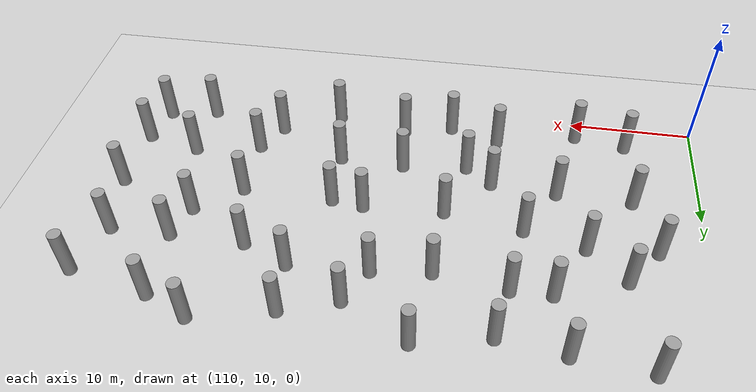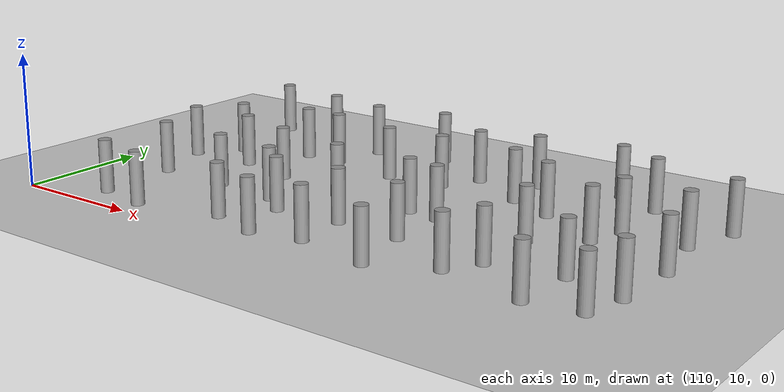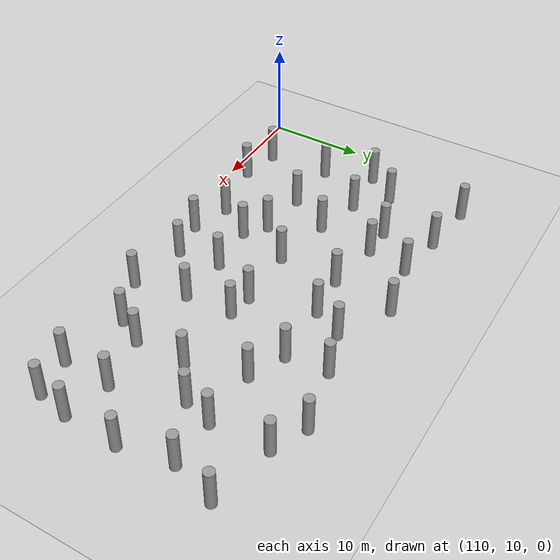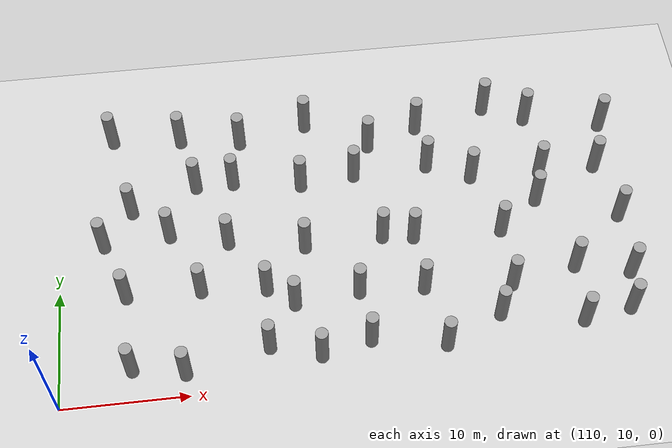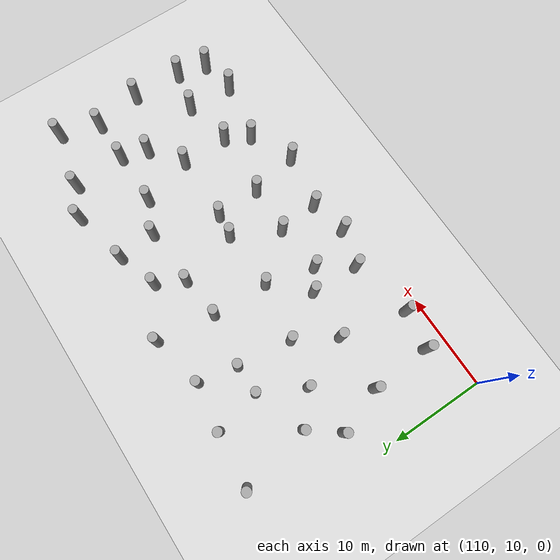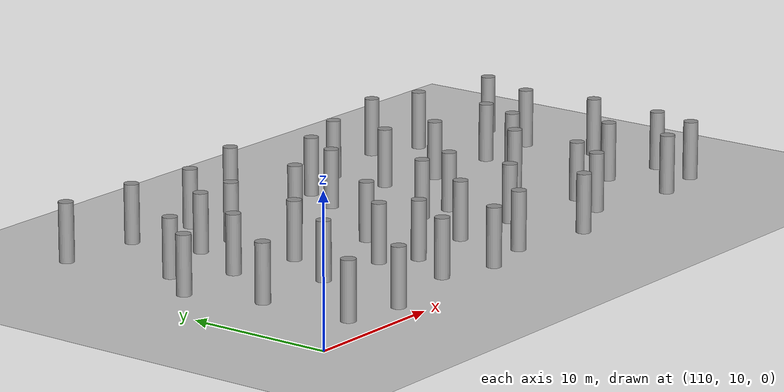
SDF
<sdf version="1.5">
 <world name="circle">
  <model name="ground">
   <static>1</static>
   <link name="link">
    <collision name="collision">
     <geometry><plane><normal>0 0 1</normal><size>100 100</size></plane></geometry>
     <surface><friction><ode><mu>100</mu><mu2>50</mu2></ode></friction></surface>
    </collision>
    <visual name="visual">
     <cast_shadows>0</cast_shadows>
     <geometry><plane><normal>0 0 1</normal><size>100 100</size></plane></geometry>
     <material>
      <script><uri>file://media/materials/scripts/gazebo.material</uri><name>Gazebo/Grey</name></script>
     </material>
    </visual>
    <velocity_decay><linear>0</linear><angular>0</angular></velocity_decay>
   </link>
  </model>
  <model name="unit_cylinder_325">
   <pose>115.605989568 12.5002759214 2 3e-06 4e-06 -0</pose>
   <static>1</static>
   <self_collide>1</self_collide>
   <link name="link">
    <inertial>
     <mass>1</mass>
     <inertia><ixx>0.145833</ixx><ixy>0</ixy><ixz>0</ixz><iyy>0.145833</iyy><iyz>0</iyz><izz>0.125</izz></inertia>
    </inertial>
    <collision name="collision">
     <geometry><cylinder><radius>0.5</radius><length>4</length></cylinder></geometry>
    </collision>
    <visual name="visual">
     <geometry><cylinder><radius>0.5</radius><length>4</length></cylinder></geometry>
     <material>
      <script><name>Gazebo/Grey</name><uri>file://media/materials/scripts/gazebo.material</uri></script>
     </material>
    </visual>
    <collision name="cyl_collision">
     <geometry><cylinder><radius>0.5</radius><length>4</length></cylinder></geometry>
    </collision>
    <sensor name="my_contact" type="contact">
     <contact><collision>cyl_collision</collision></contact>
     <update_rate>5</update_rate>
    </sensor>
   </link>
  </model>
  <model name="unit_cylinder_326">
   <pose>115.280411595 18.9539928853 2 3e-06 4e-06 -0</pose>
   <static>1</static>
   <self_collide>1</self_collide>
   <link name="link">
    <inertial>
     <mass>1</mass>
     <inertia><ixx>0.145833</ixx><ixy>0</ixy><ixz>0</ixz><iyy>0.145833</iyy><iyz>0</iyz><izz>0.125</izz></inertia>
    </inertial>
    <collision name="collision">
     <geometry><cylinder><radius>0.5</radius><length>4</length></cylinder></geometry>
    </collision>
    <visual name="visual">
     <geometry><cylinder><radius>0.5</radius><length>4</length></cylinder></geometry>
     <material>
      <script><name>Gazebo/Grey</name><uri>file://media/materials/scripts/gazebo.material</uri></script>
     </material>
    </visual>
    <collision name="cyl_collision">
     <geometry><cylinder><radius>0.5</radius><length>4</length></cylinder></geometry>
    </collision>
    <sensor name="my_contact" type="contact">
     <contact><collision>cyl_collision</collision></contact>
     <update_rate>5</update_rate>
    </sensor>
   </link>
  </model>
  <model name="unit_cylinder_327">
   <pose>113.591229002 23.8937140736 2 3e-06 4e-06 -0</pose>
   <static>1</static>
   <self_collide>1</self_collide>
   <link name="link">
    <inertial>
     <mass>1</mass>
     <inertia><ixx>0.145833</ixx><ixy>0</ixy><ixz>0</ixz><iyy>0.145833</iyy><iyz>0</iyz><izz>0.125</izz></inertia>
    </inertial>
    <collision name="collision">
     <geometry><cylinder><radius>0.5</radius><length>4</length></cylinder></geometry>
    </collision>
    <visual name="visual">
     <geometry><cylinder><radius>0.5</radius><length>4</length></cylinder></geometry>
     <material>
      <script><name>Gazebo/Grey</name><uri>file://media/materials/scripts/gazebo.material</uri></script>
     </material>
    </visual>
    <collision name="cyl_collision">
     <geometry><cylinder><radius>0.5</radius><length>4</length></cylinder></geometry>
    </collision>
    <sensor name="my_contact" type="contact">
     <contact><collision>cyl_collision</collision></contact>
     <update_rate>5</update_rate>
    </sensor>
   </link>
  </model>
  <model name="unit_cylinder_328">
   <pose>115.924734991 26.9651055388 2 3e-06 4e-06 -0</pose>
   <static>1</static>
   <self_collide>1</self_collide>
   <link name="link">
    <inertial>
     <mass>1</mass>
     <inertia><ixx>0.145833</ixx><ixy>0</ixy><ixz>0</ixz><iyy>0.145833</iyy><iyz>0</iyz><izz>0.125</izz></inertia>
    </inertial>
    <collision name="collision">
     <geometry><cylinder><radius>0.5</radius><length>4</length></cylinder></geometry>
    </collision>
    <visual name="visual">
     <geometry><cylinder><radius>0.5</radius><length>4</length></cylinder></geometry>
     <material>
      <script><name>Gazebo/Grey</name><uri>file://media/materials/scripts/gazebo.material</uri></script>
     </material>
    </visual>
    <collision name="cyl_collision">
     <geometry><cylinder><radius>0.5</radius><length>4</length></cylinder></geometry>
    </collision>
    <sensor name="my_contact" type="contact">
     <contact><collision>cyl_collision</collision></contact>
     <update_rate>5</update_rate>
    </sensor>
   </link>
  </model>
  <model name="unit_cylinder_329">
   <pose>114.476841244 34.3691525515 2 3e-06 4e-06 -0</pose>
   <static>1</static>
   <self_collide>1</self_collide>
   <link name="link">
    <inertial>
     <mass>1</mass>
     <inertia><ixx>0.145833</ixx><ixy>0</ixy><ixz>0</ixz><iyy>0.145833</iyy><iyz>0</iyz><izz>0.125</izz></inertia>
    </inertial>
    <collision name="collision">
     <geometry><cylinder><radius>0.5</radius><length>4</length></cylinder></geometry>
    </collision>
    <visual name="visual">
     <geometry><cylinder><radius>0.5</radius><length>4</length></cylinder></geometry>
     <material>
      <script><name>Gazebo/Grey</name><uri>file://media/materials/scripts/gazebo.material</uri></script>
     </material>
    </visual>
    <collision name="cyl_collision">
     <geometry><cylinder><radius>0.5</radius><length>4</length></cylinder></geometry>
    </collision>
    <sensor name="my_contact" type="contact">
     <contact><collision>cyl_collision</collision></contact>
     <update_rate>5</update_rate>
    </sensor>
   </link>
  </model>
  <model name="unit_cylinder_340">
   <pose>119.692809883 11.7624338996 2 3e-06 4e-06 -0</pose>
   <static>1</static>
   <self_collide>1</self_collide>
   <link name="link">
    <inertial>
     <mass>1</mass>
     <inertia><ixx>0.145833</ixx><ixy>0</ixy><ixz>0</ixz><iyy>0.145833</iyy><iyz>0</iyz><izz>0.125</izz></inertia>
    </inertial>
    <collision name="collision">
     <geometry><cylinder><radius>0.5</radius><length>4</length></cylinder></geometry>
    </collision>
    <visual name="visual">
     <geometry><cylinder><radius>0.5</radius><length>4</length></cylinder></geometry>
     <material>
      <script><name>Gazebo/Grey</name><uri>file://media/materials/scripts/gazebo.material</uri></script>
     </material>
    </visual>
    <collision name="cyl_collision">
     <geometry><cylinder><radius>0.5</radius><length>4</length></cylinder></geometry>
    </collision>
    <sensor name="my_contact" type="contact">
     <contact><collision>cyl_collision</collision></contact>
     <update_rate>5</update_rate>
    </sensor>
   </link>
  </model>
  <model name="unit_cylinder_341">
   <pose>121.208954116 18.8338759561 2 3e-06 4e-06 -0</pose>
   <static>1</static>
   <self_collide>1</self_collide>
   <link name="link">
    <inertial>
     <mass>1</mass>
     <inertia><ixx>0.145833</ixx><ixy>0</ixy><ixz>0</ixz><iyy>0.145833</iyy><iyz>0</iyz><izz>0.125</izz></inertia>
    </inertial>
    <collision name="collision">
     <geometry><cylinder><radius>0.5</radius><length>4</length></cylinder></geometry>
    </collision>
    <visual name="visual">
     <geometry><cylinder><radius>0.5</radius><length>4</length></cylinder></geometry>
     <material>
      <script><name>Gazebo/Grey</name><uri>file://media/materials/scripts/gazebo.material</uri></script>
     </material>
    </visual>
    <collision name="cyl_collision">
     <geometry><cylinder><radius>0.5</radius><length>4</length></cylinder></geometry>
    </collision>
    <sensor name="my_contact" type="contact">
     <contact><collision>cyl_collision</collision></contact>
     <update_rate>5</update_rate>
    </sensor>
   </link>
  </model>
  <model name="unit_cylinder_342">
   <pose>118.934955821 24.2760195008 2 3e-06 4e-06 -0</pose>
   <static>1</static>
   <self_collide>1</self_collide>
   <link name="link">
    <inertial>
     <mass>1</mass>
     <inertia><ixx>0.145833</ixx><ixy>0</ixy><ixz>0</ixz><iyy>0.145833</iyy><iyz>0</iyz><izz>0.125</izz></inertia>
    </inertial>
    <collision name="collision">
     <geometry><cylinder><radius>0.5</radius><length>4</length></cylinder></geometry>
    </collision>
    <visual name="visual">
     <geometry><cylinder><radius>0.5</radius><length>4</length></cylinder></geometry>
     <material>
      <script><name>Gazebo/Grey</name><uri>file://media/materials/scripts/gazebo.material</uri></script>
     </material>
    </visual>
    <collision name="cyl_collision">
     <geometry><cylinder><radius>0.5</radius><length>4</length></cylinder></geometry>
    </collision>
    <sensor name="my_contact" type="contact">
     <contact><collision>cyl_collision</collision></contact>
     <update_rate>5</update_rate>
    </sensor>
   </link>
  </model>
  <model name="unit_cylinder_343">
   <pose>121.280667413 28.902046064 2 3e-06 4e-06 -0</pose>
   <static>1</static>
   <self_collide>1</self_collide>
   <link name="link">
    <inertial>
     <mass>1</mass>
     <inertia><ixx>0.145833</ixx><ixy>0</ixy><ixz>0</ixz><iyy>0.145833</iyy><iyz>0</iyz><izz>0.125</izz></inertia>
    </inertial>
    <collision name="collision">
     <geometry><cylinder><radius>0.5</radius><length>4</length></cylinder></geometry>
    </collision>
    <visual name="visual">
     <geometry><cylinder><radius>0.5</radius><length>4</length></cylinder></geometry>
     <material>
      <script><name>Gazebo/Grey</name><uri>file://media/materials/scripts/gazebo.material</uri></script>
     </material>
    </visual>
    <collision name="cyl_collision">
     <geometry><cylinder><radius>0.5</radius><length>4</length></cylinder></geometry>
    </collision>
    <sensor name="my_contact" type="contact">
     <contact><collision>cyl_collision</collision></contact>
     <update_rate>5</update_rate>
    </sensor>
   </link>
  </model>
  <model name="unit_cylinder_344">
   <pose>120.201051426 33.7882813097 2 3e-06 4e-06 -0</pose>
   <static>1</static>
   <self_collide>1</self_collide>
   <link name="link">
    <inertial>
     <mass>1</mass>
     <inertia><ixx>0.145833</ixx><ixy>0</ixy><ixz>0</ixz><iyy>0.145833</iyy><iyz>0</iyz><izz>0.125</izz></inertia>
    </inertial>
    <collision name="collision">
     <geometry><cylinder><radius>0.5</radius><length>4</length></cylinder></geometry>
    </collision>
    <visual name="visual">
     <geometry><cylinder><radius>0.5</radius><length>4</length></cylinder></geometry>
     <material>
      <script><name>Gazebo/Grey</name><uri>file://media/materials/scripts/gazebo.material</uri></script>
     </material>
    </visual>
    <collision name="cyl_collision">
     <geometry><cylinder><radius>0.5</radius><length>4</length></cylinder></geometry>
    </collision>
    <sensor name="my_contact" type="contact">
     <contact><collision>cyl_collision</collision></contact>
     <update_rate>5</update_rate>
    </sensor>
   </link>
  </model>
  <model name="unit_cylinder_355">
   <pose>126.243657267 13.2986552368 2 3e-06 4e-06 -0</pose>
   <static>1</static>
   <self_collide>1</self_collide>
   <link name="link">
    <inertial>
     <mass>1</mass>
     <inertia><ixx>0.145833</ixx><ixy>0</ixy><ixz>0</ixz><iyy>0.145833</iyy><iyz>0</iyz><izz>0.125</izz></inertia>
    </inertial>
    <collision name="collision">
     <geometry><cylinder><radius>0.5</radius><length>4</length></cylinder></geometry>
    </collision>
    <visual name="visual">
     <geometry><cylinder><radius>0.5</radius><length>4</length></cylinder></geometry>
     <material>
      <script><name>Gazebo/Grey</name><uri>file://media/materials/scripts/gazebo.material</uri></script>
     </material>
    </visual>
    <collision name="cyl_collision">
     <geometry><cylinder><radius>0.5</radius><length>4</length></cylinder></geometry>
    </collision>
    <sensor name="my_contact" type="contact">
     <contact><collision>cyl_collision</collision></contact>
     <update_rate>5</update_rate>
    </sensor>
   </link>
  </model>
  <model name="unit_cylinder_356">
   <pose>126.404125272 18.4428897488 2 3e-06 4e-06 -0</pose>
   <static>1</static>
   <self_collide>1</self_collide>
   <link name="link">
    <inertial>
     <mass>1</mass>
     <inertia><ixx>0.145833</ixx><ixy>0</ixy><ixz>0</ixz><iyy>0.145833</iyy><iyz>0</iyz><izz>0.125</izz></inertia>
    </inertial>
    <collision name="collision">
     <geometry><cylinder><radius>0.5</radius><length>4</length></cylinder></geometry>
    </collision>
    <visual name="visual">
     <geometry><cylinder><radius>0.5</radius><length>4</length></cylinder></geometry>
     <material>
      <script><name>Gazebo/Grey</name><uri>file://media/materials/scripts/gazebo.material</uri></script>
     </material>
    </visual>
    <collision name="cyl_collision">
     <geometry><cylinder><radius>0.5</radius><length>4</length></cylinder></geometry>
    </collision>
    <sensor name="my_contact" type="contact">
     <contact><collision>cyl_collision</collision></contact>
     <update_rate>5</update_rate>
    </sensor>
   </link>
  </model>
  <model name="unit_cylinder_357">
   <pose>123.637140775 23.1095531696 2 3e-06 4e-06 -0</pose>
   <static>1</static>
   <self_collide>1</self_collide>
   <link name="link">
    <inertial>
     <mass>1</mass>
     <inertia><ixx>0.145833</ixx><ixy>0</ixy><ixz>0</ixz><iyy>0.145833</iyy><iyz>0</iyz><izz>0.125</izz></inertia>
    </inertial>
    <collision name="collision">
     <geometry><cylinder><radius>0.5</radius><length>4</length></cylinder></geometry>
    </collision>
    <visual name="visual">
     <geometry><cylinder><radius>0.5</radius><length>4</length></cylinder></geometry>
     <material>
      <script><name>Gazebo/Grey</name><uri>file://media/materials/scripts/gazebo.material</uri></script>
     </material>
    </visual>
    <collision name="cyl_collision">
     <geometry><cylinder><radius>0.5</radius><length>4</length></cylinder></geometry>
    </collision>
    <sensor name="my_contact" type="contact">
     <contact><collision>cyl_collision</collision></contact>
     <update_rate>5</update_rate>
    </sensor>
   </link>
  </model>
  <model name="unit_cylinder_358">
   <pose>124.386950311 28.9359830992 2 3e-06 4e-06 -0</pose>
   <static>1</static>
   <self_collide>1</self_collide>
   <link name="link">
    <inertial>
     <mass>1</mass>
     <inertia><ixx>0.145833</ixx><ixy>0</ixy><ixz>0</ixz><iyy>0.145833</iyy><iyz>0</iyz><izz>0.125</izz></inertia>
    </inertial>
    <collision name="collision">
     <geometry><cylinder><radius>0.5</radius><length>4</length></cylinder></geometry>
    </collision>
    <visual name="visual">
     <geometry><cylinder><radius>0.5</radius><length>4</length></cylinder></geometry>
     <material>
      <script><name>Gazebo/Grey</name><uri>file://media/materials/scripts/gazebo.material</uri></script>
     </material>
    </visual>
    <collision name="cyl_collision">
     <geometry><cylinder><radius>0.5</radius><length>4</length></cylinder></geometry>
    </collision>
    <sensor name="my_contact" type="contact">
     <contact><collision>cyl_collision</collision></contact>
     <update_rate>5</update_rate>
    </sensor>
   </link>
  </model>
  <model name="unit_cylinder_359">
   <pose>125.207109356 33.0609135572 2 3e-06 4e-06 -0</pose>
   <static>1</static>
   <self_collide>1</self_collide>
   <link name="link">
    <inertial>
     <mass>1</mass>
     <inertia><ixx>0.145833</ixx><ixy>0</ixy><ixz>0</ixz><iyy>0.145833</iyy><iyz>0</iyz><izz>0.125</izz></inertia>
    </inertial>
    <collision name="collision">
     <geometry><cylinder><radius>0.5</radius><length>4</length></cylinder></geometry>
    </collision>
    <visual name="visual">
     <geometry><cylinder><radius>0.5</radius><length>4</length></cylinder></geometry>
     <material>
      <script><name>Gazebo/Grey</name><uri>file://media/materials/scripts/gazebo.material</uri></script>
     </material>
    </visual>
    <collision name="cyl_collision">
     <geometry><cylinder><radius>0.5</radius><length>4</length></cylinder></geometry>
    </collision>
    <sensor name="my_contact" type="contact">
     <contact><collision>cyl_collision</collision></contact>
     <update_rate>5</update_rate>
    </sensor>
   </link>
  </model>
  <model name="unit_cylinder_370">
   <pose>130.178801308 12.125310192 2 3e-06 4e-06 -0</pose>
   <static>1</static>
   <self_collide>1</self_collide>
   <link name="link">
    <inertial>
     <mass>1</mass>
     <inertia><ixx>0.145833</ixx><ixy>0</ixy><ixz>0</ixz><iyy>0.145833</iyy><iyz>0</iyz><izz>0.125</izz></inertia>
    </inertial>
    <collision name="collision">
     <geometry><cylinder><radius>0.5</radius><length>4</length></cylinder></geometry>
    </collision>
    <visual name="visual">
     <geometry><cylinder><radius>0.5</radius><length>4</length></cylinder></geometry>
     <material>
      <script><name>Gazebo/Grey</name><uri>file://media/materials/scripts/gazebo.material</uri></script>
     </material>
    </visual>
    <collision name="cyl_collision">
     <geometry><cylinder><radius>0.5</radius><length>4</length></cylinder></geometry>
    </collision>
    <sensor name="my_contact" type="contact">
     <contact><collision>cyl_collision</collision></contact>
     <update_rate>5</update_rate>
    </sensor>
   </link>
  </model>
  <model name="unit_cylinder_371">
   <pose>128.517404867 16.8608073278 2 3e-06 4e-06 -0</pose>
   <static>1</static>
   <self_collide>1</self_collide>
   <link name="link">
    <inertial>
     <mass>1</mass>
     <inertia><ixx>0.145833</ixx><ixy>0</ixy><ixz>0</ixz><iyy>0.145833</iyy><iyz>0</iyz><izz>0.125</izz></inertia>
    </inertial>
    <collision name="collision">
     <geometry><cylinder><radius>0.5</radius><length>4</length></cylinder></geometry>
    </collision>
    <visual name="visual">
     <geometry><cylinder><radius>0.5</radius><length>4</length></cylinder></geometry>
     <material>
      <script><name>Gazebo/Grey</name><uri>file://media/materials/scripts/gazebo.material</uri></script>
     </material>
    </visual>
    <collision name="cyl_collision">
     <geometry><cylinder><radius>0.5</radius><length>4</length></cylinder></geometry>
    </collision>
    <sensor name="my_contact" type="contact">
     <contact><collision>cyl_collision</collision></contact>
     <update_rate>5</update_rate>
    </sensor>
   </link>
  </model>
  <model name="unit_cylinder_372">
   <pose>129.798509613 22.0510549619 2 3e-06 4e-06 -0</pose>
   <static>1</static>
   <self_collide>1</self_collide>
   <link name="link">
    <inertial>
     <mass>1</mass>
     <inertia><ixx>0.145833</ixx><ixy>0</ixy><ixz>0</ixz><iyy>0.145833</iyy><iyz>0</iyz><izz>0.125</izz></inertia>
    </inertial>
    <collision name="collision">
     <geometry><cylinder><radius>0.5</radius><length>4</length></cylinder></geometry>
    </collision>
    <visual name="visual">
     <geometry><cylinder><radius>0.5</radius><length>4</length></cylinder></geometry>
     <material>
      <script><name>Gazebo/Grey</name><uri>file://media/materials/scripts/gazebo.material</uri></script>
     </material>
    </visual>
    <collision name="cyl_collision">
     <geometry><cylinder><radius>0.5</radius><length>4</length></cylinder></geometry>
    </collision>
    <sensor name="my_contact" type="contact">
     <contact><collision>cyl_collision</collision></contact>
     <update_rate>5</update_rate>
    </sensor>
   </link>
  </model>
  <model name="unit_cylinder_373">
   <pose>130.001399854 28.1161930904 2 3e-06 4e-06 -0</pose>
   <static>1</static>
   <self_collide>1</self_collide>
   <link name="link">
    <inertial>
     <mass>1</mass>
     <inertia><ixx>0.145833</ixx><ixy>0</ixy><ixz>0</ixz><iyy>0.145833</iyy><iyz>0</iyz><izz>0.125</izz></inertia>
    </inertial>
    <collision name="collision">
     <geometry><cylinder><radius>0.5</radius><length>4</length></cylinder></geometry>
    </collision>
    <visual name="visual">
     <geometry><cylinder><radius>0.5</radius><length>4</length></cylinder></geometry>
     <material>
      <script><name>Gazebo/Grey</name><uri>file://media/materials/scripts/gazebo.material</uri></script>
     </material>
    </visual>
    <collision name="cyl_collision">
     <geometry><cylinder><radius>0.5</radius><length>4</length></cylinder></geometry>
    </collision>
    <sensor name="my_contact" type="contact">
     <contact><collision>cyl_collision</collision></contact>
     <update_rate>5</update_rate>
    </sensor>
   </link>
  </model>
  <model name="unit_cylinder_374">
   <pose>130.865938101 34.2965330529 2 3e-06 4e-06 -0</pose>
   <static>1</static>
   <self_collide>1</self_collide>
   <link name="link">
    <inertial>
     <mass>1</mass>
     <inertia><ixx>0.145833</ixx><ixy>0</ixy><ixz>0</ixz><iyy>0.145833</iyy><iyz>0</iyz><izz>0.125</izz></inertia>
    </inertial>
    <collision name="collision">
     <geometry><cylinder><radius>0.5</radius><length>4</length></cylinder></geometry>
    </collision>
    <visual name="visual">
     <geometry><cylinder><radius>0.5</radius><length>4</length></cylinder></geometry>
     <material>
      <script><name>Gazebo/Grey</name><uri>file://media/materials/scripts/gazebo.material</uri></script>
     </material>
    </visual>
    <collision name="cyl_collision">
     <geometry><cylinder><radius>0.5</radius><length>4</length></cylinder></geometry>
    </collision>
    <sensor name="my_contact" type="contact">
     <contact><collision>cyl_collision</collision></contact>
     <update_rate>5</update_rate>
    </sensor>
   </link>
  </model>
  <model name="unit_cylinder_385">
   <pose>134.107284195 13.0319700129 2 3e-06 4e-06 -0</pose>
   <static>1</static>
   <self_collide>1</self_collide>
   <link name="link">
    <inertial>
     <mass>1</mass>
     <inertia><ixx>0.145833</ixx><ixy>0</ixy><ixz>0</ixz><iyy>0.145833</iyy><iyz>0</iyz><izz>0.125</izz></inertia>
    </inertial>
    <collision name="collision">
     <geometry><cylinder><radius>0.5</radius><length>4</length></cylinder></geometry>
    </collision>
    <visual name="visual">
     <geometry><cylinder><radius>0.5</radius><length>4</length></cylinder></geometry>
     <material>
      <script><name>Gazebo/Grey</name><uri>file://media/materials/scripts/gazebo.material</uri></script>
     </material>
    </visual>
    <collision name="cyl_collision">
     <geometry><cylinder><radius>0.5</radius><length>4</length></cylinder></geometry>
    </collision>
    <sensor name="my_contact" type="contact">
     <contact><collision>cyl_collision</collision></contact>
     <update_rate>5</update_rate>
    </sensor>
   </link>
  </model>
  <model name="unit_cylinder_386">
   <pose>133.686815189 17.3727570334 2 3e-06 4e-06 -0</pose>
   <static>1</static>
   <self_collide>1</self_collide>
   <link name="link">
    <inertial>
     <mass>1</mass>
     <inertia><ixx>0.145833</ixx><ixy>0</ixy><ixz>0</ixz><iyy>0.145833</iyy><iyz>0</iyz><izz>0.125</izz></inertia>
    </inertial>
    <collision name="collision">
     <geometry><cylinder><radius>0.5</radius><length>4</length></cylinder></geometry>
    </collision>
    <visual name="visual">
     <geometry><cylinder><radius>0.5</radius><length>4</length></cylinder></geometry>
     <material>
      <script><name>Gazebo/Grey</name><uri>file://media/materials/scripts/gazebo.material</uri></script>
     </material>
    </visual>
    <collision name="cyl_collision">
     <geometry><cylinder><radius>0.5</radius><length>4</length></cylinder></geometry>
    </collision>
    <sensor name="my_contact" type="contact">
     <contact><collision>cyl_collision</collision></contact>
     <update_rate>5</update_rate>
    </sensor>
   </link>
  </model>
  <model name="unit_cylinder_387">
   <pose>136.136465385 22.3153739831 2 3e-06 4e-06 -0</pose>
   <static>1</static>
   <self_collide>1</self_collide>
   <link name="link">
    <inertial>
     <mass>1</mass>
     <inertia><ixx>0.145833</ixx><ixy>0</ixy><ixz>0</ixz><iyy>0.145833</iyy><iyz>0</iyz><izz>0.125</izz></inertia>
    </inertial>
    <collision name="collision">
     <geometry><cylinder><radius>0.5</radius><length>4</length></cylinder></geometry>
    </collision>
    <visual name="visual">
     <geometry><cylinder><radius>0.5</radius><length>4</length></cylinder></geometry>
     <material>
      <script><name>Gazebo/Grey</name><uri>file://media/materials/scripts/gazebo.material</uri></script>
     </material>
    </visual>
    <collision name="cyl_collision">
     <geometry><cylinder><radius>0.5</radius><length>4</length></cylinder></geometry>
    </collision>
    <sensor name="my_contact" type="contact">
     <contact><collision>cyl_collision</collision></contact>
     <update_rate>5</update_rate>
    </sensor>
   </link>
  </model>
  <model name="unit_cylinder_388">
   <pose>134.492599111 28.6259088126 2 3e-06 4e-06 -0</pose>
   <static>1</static>
   <self_collide>1</self_collide>
   <link name="link">
    <inertial>
     <mass>1</mass>
     <inertia><ixx>0.145833</ixx><ixy>0</ixy><ixz>0</ixz><iyy>0.145833</iyy><iyz>0</iyz><izz>0.125</izz></inertia>
    </inertial>
    <collision name="collision">
     <geometry><cylinder><radius>0.5</radius><length>4</length></cylinder></geometry>
    </collision>
    <visual name="visual">
     <geometry><cylinder><radius>0.5</radius><length>4</length></cylinder></geometry>
     <material>
      <script><name>Gazebo/Grey</name><uri>file://media/materials/scripts/gazebo.material</uri></script>
     </material>
    </visual>
    <collision name="cyl_collision">
     <geometry><cylinder><radius>0.5</radius><length>4</length></cylinder></geometry>
    </collision>
    <sensor name="my_contact" type="contact">
     <contact><collision>cyl_collision</collision></contact>
     <update_rate>5</update_rate>
    </sensor>
   </link>
  </model>
  <model name="unit_cylinder_389">
   <pose>136.032847185 31.5330151037 2 3e-06 4e-06 -0</pose>
   <static>1</static>
   <self_collide>1</self_collide>
   <link name="link">
    <inertial>
     <mass>1</mass>
     <inertia><ixx>0.145833</ixx><ixy>0</ixy><ixz>0</ixz><iyy>0.145833</iyy><iyz>0</iyz><izz>0.125</izz></inertia>
    </inertial>
    <collision name="collision">
     <geometry><cylinder><radius>0.5</radius><length>4</length></cylinder></geometry>
    </collision>
    <visual name="visual">
     <geometry><cylinder><radius>0.5</radius><length>4</length></cylinder></geometry>
     <material>
      <script><name>Gazebo/Grey</name><uri>file://media/materials/scripts/gazebo.material</uri></script>
     </material>
    </visual>
    <collision name="cyl_collision">
     <geometry><cylinder><radius>0.5</radius><length>4</length></cylinder></geometry>
    </collision>
    <sensor name="my_contact" type="contact">
     <contact><collision>cyl_collision</collision></contact>
     <update_rate>5</update_rate>
    </sensor>
   </link>
  </model>
  <model name="unit_cylinder_400">
   <pose>139.907118592 11.9881175852 2 3e-06 4e-06 -0</pose>
   <static>1</static>
   <self_collide>1</self_collide>
   <link name="link">
    <inertial>
     <mass>1</mass>
     <inertia><ixx>0.145833</ixx><ixy>0</ixy><ixz>0</ixz><iyy>0.145833</iyy><iyz>0</iyz><izz>0.125</izz></inertia>
    </inertial>
    <collision name="collision">
     <geometry><cylinder><radius>0.5</radius><length>4</length></cylinder></geometry>
    </collision>
    <visual name="visual">
     <geometry><cylinder><radius>0.5</radius><length>4</length></cylinder></geometry>
     <material>
      <script><name>Gazebo/Grey</name><uri>file://media/materials/scripts/gazebo.material</uri></script>
     </material>
    </visual>
    <collision name="cyl_collision">
     <geometry><cylinder><radius>0.5</radius><length>4</length></cylinder></geometry>
    </collision>
    <sensor name="my_contact" type="contact">
     <contact><collision>cyl_collision</collision></contact>
     <update_rate>5</update_rate>
    </sensor>
   </link>
  </model>
  <model name="unit_cylinder_401">
   <pose>138.853509311 17.1787029502 2 3e-06 4e-06 -0</pose>
   <static>1</static>
   <self_collide>1</self_collide>
   <link name="link">
    <inertial>
     <mass>1</mass>
     <inertia><ixx>0.145833</ixx><ixy>0</ixy><ixz>0</ixz><iyy>0.145833</iyy><iyz>0</iyz><izz>0.125</izz></inertia>
    </inertial>
    <collision name="collision">
     <geometry><cylinder><radius>0.5</radius><length>4</length></cylinder></geometry>
    </collision>
    <visual name="visual">
     <geometry><cylinder><radius>0.5</radius><length>4</length></cylinder></geometry>
     <material>
      <script><name>Gazebo/Grey</name><uri>file://media/materials/scripts/gazebo.material</uri></script>
     </material>
    </visual>
    <collision name="cyl_collision">
     <geometry><cylinder><radius>0.5</radius><length>4</length></cylinder></geometry>
    </collision>
    <sensor name="my_contact" type="contact">
     <contact><collision>cyl_collision</collision></contact>
     <update_rate>5</update_rate>
    </sensor>
   </link>
  </model>
  <model name="unit_cylinder_402">
   <pose>138.652755857 21.9917681627 2 3e-06 4e-06 -0</pose>
   <static>1</static>
   <self_collide>1</self_collide>
   <link name="link">
    <inertial>
     <mass>1</mass>
     <inertia><ixx>0.145833</ixx><ixy>0</ixy><ixz>0</ixz><iyy>0.145833</iyy><iyz>0</iyz><izz>0.125</izz></inertia>
    </inertial>
    <collision name="collision">
     <geometry><cylinder><radius>0.5</radius><length>4</length></cylinder></geometry>
    </collision>
    <visual name="visual">
     <geometry><cylinder><radius>0.5</radius><length>4</length></cylinder></geometry>
     <material>
      <script><name>Gazebo/Grey</name><uri>file://media/materials/scripts/gazebo.material</uri></script>
     </material>
    </visual>
    <collision name="cyl_collision">
     <geometry><cylinder><radius>0.5</radius><length>4</length></cylinder></geometry>
    </collision>
    <sensor name="my_contact" type="contact">
     <contact><collision>cyl_collision</collision></contact>
     <update_rate>5</update_rate>
    </sensor>
   </link>
  </model>
  <model name="unit_cylinder_403">
   <pose>140.683910757 28.8907137255 2 3e-06 4e-06 -0</pose>
   <static>1</static>
   <self_collide>1</self_collide>
   <link name="link">
    <inertial>
     <mass>1</mass>
     <inertia><ixx>0.145833</ixx><ixy>0</ixy><ixz>0</ixz><iyy>0.145833</iyy><iyz>0</iyz><izz>0.125</izz></inertia>
    </inertial>
    <collision name="collision">
     <geometry><cylinder><radius>0.5</radius><length>4</length></cylinder></geometry>
    </collision>
    <visual name="visual">
     <geometry><cylinder><radius>0.5</radius><length>4</length></cylinder></geometry>
     <material>
      <script><name>Gazebo/Grey</name><uri>file://media/materials/scripts/gazebo.material</uri></script>
     </material>
    </visual>
    <collision name="cyl_collision">
     <geometry><cylinder><radius>0.5</radius><length>4</length></cylinder></geometry>
    </collision>
    <sensor name="my_contact" type="contact">
     <contact><collision>cyl_collision</collision></contact>
     <update_rate>5</update_rate>
    </sensor>
   </link>
  </model>
  <model name="unit_cylinder_404">
   <pose>140.315204736 32.9915099361 2 3e-06 4e-06 -0</pose>
   <static>1</static>
   <self_collide>1</self_collide>
   <link name="link">
    <inertial>
     <mass>1</mass>
     <inertia><ixx>0.145833</ixx><ixy>0</ixy><ixz>0</ixz><iyy>0.145833</iyy><iyz>0</iyz><izz>0.125</izz></inertia>
    </inertial>
    <collision name="collision">
     <geometry><cylinder><radius>0.5</radius><length>4</length></cylinder></geometry>
    </collision>
    <visual name="visual">
     <geometry><cylinder><radius>0.5</radius><length>4</length></cylinder></geometry>
     <material>
      <script><name>Gazebo/Grey</name><uri>file://media/materials/scripts/gazebo.material</uri></script>
     </material>
    </visual>
    <collision name="cyl_collision">
     <geometry><cylinder><radius>0.5</radius><length>4</length></cylinder></geometry>
    </collision>
    <sensor name="my_contact" type="contact">
     <contact><collision>cyl_collision</collision></contact>
     <update_rate>5</update_rate>
    </sensor>
   </link>
  </model>
  <model name="unit_cylinder_415">
   <pose>144.476314827 14.171475402 2 3e-06 4e-06 -0</pose>
   <static>1</static>
   <self_collide>1</self_collide>
   <link name="link">
    <inertial>
     <mass>1</mass>
     <inertia><ixx>0.145833</ixx><ixy>0</ixy><ixz>0</ixz><iyy>0.145833</iyy><iyz>0</iyz><izz>0.125</izz></inertia>
    </inertial>
    <collision name="collision">
     <geometry><cylinder><radius>0.5</radius><length>4</length></cylinder></geometry>
    </collision>
    <visual name="visual">
     <geometry><cylinder><radius>0.5</radius><length>4</length></cylinder></geometry>
     <material>
      <script><name>Gazebo/Grey</name><uri>file://media/materials/scripts/gazebo.material</uri></script>
     </material>
    </visual>
    <collision name="cyl_collision">
     <geometry><cylinder><radius>0.5</radius><length>4</length></cylinder></geometry>
    </collision>
    <sensor name="my_contact" type="contact">
     <contact><collision>cyl_collision</collision></contact>
     <update_rate>5</update_rate>
    </sensor>
   </link>
  </model>
  <model name="unit_cylinder_416">
   <pose>145.874805639 16.7389174417 2 3e-06 4e-06 -0</pose>
   <static>1</static>
   <self_collide>1</self_collide>
   <link name="link">
    <inertial>
     <mass>1</mass>
     <inertia><ixx>0.145833</ixx><ixy>0</ixy><ixz>0</ixz><iyy>0.145833</iyy><iyz>0</iyz><izz>0.125</izz></inertia>
    </inertial>
    <collision name="collision">
     <geometry><cylinder><radius>0.5</radius><length>4</length></cylinder></geometry>
    </collision>
    <visual name="visual">
     <geometry><cylinder><radius>0.5</radius><length>4</length></cylinder></geometry>
     <material>
      <script><name>Gazebo/Grey</name><uri>file://media/materials/scripts/gazebo.material</uri></script>
     </material>
    </visual>
    <collision name="cyl_collision">
     <geometry><cylinder><radius>0.5</radius><length>4</length></cylinder></geometry>
    </collision>
    <sensor name="my_contact" type="contact">
     <contact><collision>cyl_collision</collision></contact>
     <update_rate>5</update_rate>
    </sensor>
   </link>
  </model>
  <model name="unit_cylinder_417">
   <pose>145.852013113 21.8367245242 2 3e-06 4e-06 -0</pose>
   <static>1</static>
   <self_collide>1</self_collide>
   <link name="link">
    <inertial>
     <mass>1</mass>
     <inertia><ixx>0.145833</ixx><ixy>0</ixy><ixz>0</ixz><iyy>0.145833</iyy><iyz>0</iyz><izz>0.125</izz></inertia>
    </inertial>
    <collision name="collision">
     <geometry><cylinder><radius>0.5</radius><length>4</length></cylinder></geometry>
    </collision>
    <visual name="visual">
     <geometry><cylinder><radius>0.5</radius><length>4</length></cylinder></geometry>
     <material>
      <script><name>Gazebo/Grey</name><uri>file://media/materials/scripts/gazebo.material</uri></script>
     </material>
    </visual>
    <collision name="cyl_collision">
     <geometry><cylinder><radius>0.5</radius><length>4</length></cylinder></geometry>
    </collision>
    <sensor name="my_contact" type="contact">
     <contact><collision>cyl_collision</collision></contact>
     <update_rate>5</update_rate>
    </sensor>
   </link>
  </model>
  <model name="unit_cylinder_418">
   <pose>144.24827546 27.359598009 2 3e-06 4e-06 -0</pose>
   <static>1</static>
   <self_collide>1</self_collide>
   <link name="link">
    <inertial>
     <mass>1</mass>
     <inertia><ixx>0.145833</ixx><ixy>0</ixy><ixz>0</ixz><iyy>0.145833</iyy><iyz>0</iyz><izz>0.125</izz></inertia>
    </inertial>
    <collision name="collision">
     <geometry><cylinder><radius>0.5</radius><length>4</length></cylinder></geometry>
    </collision>
    <visual name="visual">
     <geometry><cylinder><radius>0.5</radius><length>4</length></cylinder></geometry>
     <material>
      <script><name>Gazebo/Grey</name><uri>file://media/materials/scripts/gazebo.material</uri></script>
     </material>
    </visual>
    <collision name="cyl_collision">
     <geometry><cylinder><radius>0.5</radius><length>4</length></cylinder></geometry>
    </collision>
    <sensor name="my_contact" type="contact">
     <contact><collision>cyl_collision</collision></contact>
     <update_rate>5</update_rate>
    </sensor>
   </link>
  </model>
  <model name="unit_cylinder_419">
   <pose>146.413711982 34.4148967775 2 3e-06 4e-06 -0</pose>
   <static>1</static>
   <self_collide>1</self_collide>
   <link name="link">
    <inertial>
     <mass>1</mass>
     <inertia><ixx>0.145833</ixx><ixy>0</ixy><ixz>0</ixz><iyy>0.145833</iyy><iyz>0</iyz><izz>0.125</izz></inertia>
    </inertial>
    <collision name="collision">
     <geometry><cylinder><radius>0.5</radius><length>4</length></cylinder></geometry>
    </collision>
    <visual name="visual">
     <geometry><cylinder><radius>0.5</radius><length>4</length></cylinder></geometry>
     <material>
      <script><name>Gazebo/Grey</name><uri>file://media/materials/scripts/gazebo.material</uri></script>
     </material>
    </visual>
    <collision name="cyl_collision">
     <geometry><cylinder><radius>0.5</radius><length>4</length></cylinder></geometry>
    </collision>
    <sensor name="my_contact" type="contact">
     <contact><collision>cyl_collision</collision></contact>
     <update_rate>5</update_rate>
    </sensor>
   </link>
  </model>
  <model name="unit_cylinder_430">
   <pose>150.92151361 12.8895858538 2 3e-06 4e-06 -0</pose>
   <static>1</static>
   <self_collide>1</self_collide>
   <link name="link">
    <inertial>
     <mass>1</mass>
     <inertia><ixx>0.145833</ixx><ixy>0</ixy><ixz>0</ixz><iyy>0.145833</iyy><iyz>0</iyz><izz>0.125</izz></inertia>
    </inertial>
    <collision name="collision">
     <geometry><cylinder><radius>0.5</radius><length>4</length></cylinder></geometry>
    </collision>
    <visual name="visual">
     <geometry><cylinder><radius>0.5</radius><length>4</length></cylinder></geometry>
     <material>
      <script><name>Gazebo/Grey</name><uri>file://media/materials/scripts/gazebo.material</uri></script>
     </material>
    </visual>
    <collision name="cyl_collision">
     <geometry><cylinder><radius>0.5</radius><length>4</length></cylinder></geometry>
    </collision>
    <sensor name="my_contact" type="contact">
     <contact><collision>cyl_collision</collision></contact>
     <update_rate>5</update_rate>
    </sensor>
   </link>
  </model>
  <model name="unit_cylinder_431">
   <pose>151.145575125 17.8166270686 2 3e-06 4e-06 -0</pose>
   <static>1</static>
   <self_collide>1</self_collide>
   <link name="link">
    <inertial>
     <mass>1</mass>
     <inertia><ixx>0.145833</ixx><ixy>0</ixy><ixz>0</ixz><iyy>0.145833</iyy><iyz>0</iyz><izz>0.125</izz></inertia>
    </inertial>
    <collision name="collision">
     <geometry><cylinder><radius>0.5</radius><length>4</length></cylinder></geometry>
    </collision>
    <visual name="visual">
     <geometry><cylinder><radius>0.5</radius><length>4</length></cylinder></geometry>
     <material>
      <script><name>Gazebo/Grey</name><uri>file://media/materials/scripts/gazebo.material</uri></script>
     </material>
    </visual>
    <collision name="cyl_collision">
     <geometry><cylinder><radius>0.5</radius><length>4</length></cylinder></geometry>
    </collision>
    <sensor name="my_contact" type="contact">
     <contact><collision>cyl_collision</collision></contact>
     <update_rate>5</update_rate>
    </sensor>
   </link>
  </model>
  <model name="unit_cylinder_432">
   <pose>149.207397133 24.4727976677 2 3e-06 4e-06 -0</pose>
   <static>1</static>
   <self_collide>1</self_collide>
   <link name="link">
    <inertial>
     <mass>1</mass>
     <inertia><ixx>0.145833</ixx><ixy>0</ixy><ixz>0</ixz><iyy>0.145833</iyy><iyz>0</iyz><izz>0.125</izz></inertia>
    </inertial>
    <collision name="collision">
     <geometry><cylinder><radius>0.5</radius><length>4</length></cylinder></geometry>
    </collision>
    <visual name="visual">
     <geometry><cylinder><radius>0.5</radius><length>4</length></cylinder></geometry>
     <material>
      <script><name>Gazebo/Grey</name><uri>file://media/materials/scripts/gazebo.material</uri></script>
     </material>
    </visual>
    <collision name="cyl_collision">
     <geometry><cylinder><radius>0.5</radius><length>4</length></cylinder></geometry>
    </collision>
    <sensor name="my_contact" type="contact">
     <contact><collision>cyl_collision</collision></contact>
     <update_rate>5</update_rate>
    </sensor>
   </link>
  </model>
  <model name="unit_cylinder_433">
   <pose>150.064334498 27.2978466062 2 3e-06 4e-06 -0</pose>
   <static>1</static>
   <self_collide>1</self_collide>
   <link name="link">
    <inertial>
     <mass>1</mass>
     <inertia><ixx>0.145833</ixx><ixy>0</ixy><ixz>0</ixz><iyy>0.145833</iyy><iyz>0</iyz><izz>0.125</izz></inertia>
    </inertial>
    <collision name="collision">
     <geometry><cylinder><radius>0.5</radius><length>4</length></cylinder></geometry>
    </collision>
    <visual name="visual">
     <geometry><cylinder><radius>0.5</radius><length>4</length></cylinder></geometry>
     <material>
      <script><name>Gazebo/Grey</name><uri>file://media/materials/scripts/gazebo.material</uri></script>
     </material>
    </visual>
    <collision name="cyl_collision">
     <geometry><cylinder><radius>0.5</radius><length>4</length></cylinder></geometry>
    </collision>
    <sensor name="my_contact" type="contact">
     <contact><collision>cyl_collision</collision></contact>
     <update_rate>5</update_rate>
    </sensor>
   </link>
  </model>
  <model name="unit_cylinder_434">
   <pose>149.792884729 32.9018270958 2 3e-06 4e-06 -0</pose>
   <static>1</static>
   <self_collide>1</self_collide>
   <link name="link">
    <inertial>
     <mass>1</mass>
     <inertia><ixx>0.145833</ixx><ixy>0</ixy><ixz>0</ixz><iyy>0.145833</iyy><iyz>0</iyz><izz>0.125</izz></inertia>
    </inertial>
    <collision name="collision">
     <geometry><cylinder><radius>0.5</radius><length>4</length></cylinder></geometry>
    </collision>
    <visual name="visual">
     <geometry><cylinder><radius>0.5</radius><length>4</length></cylinder></geometry>
     <material>
      <script><name>Gazebo/Grey</name><uri>file://media/materials/scripts/gazebo.material</uri></script>
     </material>
    </visual>
    <collision name="cyl_collision">
     <geometry><cylinder><radius>0.5</radius><length>4</length></cylinder></geometry>
    </collision>
    <sensor name="my_contact" type="contact">
     <contact><collision>cyl_collision</collision></contact>
     <update_rate>5</update_rate>
    </sensor>
   </link>
  </model>
  <model name="unit_cylinder_445">
   <pose>154.775451903 13.5780144853 2 3e-06 4e-06 -0</pose>
   <static>1</static>
   <self_collide>1</self_collide>
   <link name="link">
    <inertial>
     <mass>1</mass>
     <inertia><ixx>0.145833</ixx><ixy>0</ixy><ixz>0</ixz><iyy>0.145833</iyy><iyz>0</iyz><izz>0.125</izz></inertia>
    </inertial>
    <collision name="collision">
     <geometry><cylinder><radius>0.5</radius><length>4</length></cylinder></geometry>
    </collision>
    <visual name="visual">
     <geometry><cylinder><radius>0.5</radius><length>4</length></cylinder></geometry>
     <material>
      <script><name>Gazebo/Grey</name><uri>file://media/materials/scripts/gazebo.material</uri></script>
     </material>
    </visual>
    <collision name="cyl_collision">
     <geometry><cylinder><radius>0.5</radius><length>4</length></cylinder></geometry>
    </collision>
    <sensor name="my_contact" type="contact">
     <contact><collision>cyl_collision</collision></contact>
     <update_rate>5</update_rate>
    </sensor>
   </link>
  </model>
  <model name="unit_cylinder_446">
   <pose>155.494334267 16.7858139449 2 3e-06 4e-06 -0</pose>
   <static>1</static>
   <self_collide>1</self_collide>
   <link name="link">
    <inertial>
     <mass>1</mass>
     <inertia><ixx>0.145833</ixx><ixy>0</ixy><ixz>0</ixz><iyy>0.145833</iyy><iyz>0</iyz><izz>0.125</izz></inertia>
    </inertial>
    <collision name="collision">
     <geometry><cylinder><radius>0.5</radius><length>4</length></cylinder></geometry>
    </collision>
    <visual name="visual">
     <geometry><cylinder><radius>0.5</radius><length>4</length></cylinder></geometry>
     <material>
      <script><name>Gazebo/Grey</name><uri>file://media/materials/scripts/gazebo.material</uri></script>
     </material>
    </visual>
    <collision name="cyl_collision">
     <geometry><cylinder><radius>0.5</radius><length>4</length></cylinder></geometry>
    </collision>
    <sensor name="my_contact" type="contact">
     <contact><collision>cyl_collision</collision></contact>
     <update_rate>5</update_rate>
    </sensor>
   </link>
  </model>
  <model name="unit_cylinder_447">
   <pose>155.713569156 22.2068119772 2 3e-06 4e-06 -0</pose>
   <static>1</static>
   <self_collide>1</self_collide>
   <link name="link">
    <inertial>
     <mass>1</mass>
     <inertia><ixx>0.145833</ixx><ixy>0</ixy><ixz>0</ixz><iyy>0.145833</iyy><iyz>0</iyz><izz>0.125</izz></inertia>
    </inertial>
    <collision name="collision">
     <geometry><cylinder><radius>0.5</radius><length>4</length></cylinder></geometry>
    </collision>
    <visual name="visual">
     <geometry><cylinder><radius>0.5</radius><length>4</length></cylinder></geometry>
     <material>
      <script><name>Gazebo/Grey</name><uri>file://media/materials/scripts/gazebo.material</uri></script>
     </material>
    </visual>
    <collision name="cyl_collision">
     <geometry><cylinder><radius>0.5</radius><length>4</length></cylinder></geometry>
    </collision>
    <sensor name="my_contact" type="contact">
     <contact><collision>cyl_collision</collision></contact>
     <update_rate>5</update_rate>
    </sensor>
   </link>
  </model>
  <model name="unit_cylinder_448">
   <pose>154.744601107 27.3024409606 2 3e-06 4e-06 -0</pose>
   <static>1</static>
   <self_collide>1</self_collide>
   <link name="link">
    <inertial>
     <mass>1</mass>
     <inertia><ixx>0.145833</ixx><ixy>0</ixy><ixz>0</ixz><iyy>0.145833</iyy><iyz>0</iyz><izz>0.125</izz></inertia>
    </inertial>
    <collision name="collision">
     <geometry><cylinder><radius>0.5</radius><length>4</length></cylinder></geometry>
    </collision>
    <visual name="visual">
     <geometry><cylinder><radius>0.5</radius><length>4</length></cylinder></geometry>
     <material>
      <script><name>Gazebo/Grey</name><uri>file://media/materials/scripts/gazebo.material</uri></script>
     </material>
    </visual>
    <collision name="cyl_collision">
     <geometry><cylinder><radius>0.5</radius><length>4</length></cylinder></geometry>
    </collision>
    <sensor name="my_contact" type="contact">
     <contact><collision>cyl_collision</collision></contact>
     <update_rate>5</update_rate>
    </sensor>
   </link>
  </model>
  <model name="unit_cylinder_449">
   <pose>156.10232515 31.5429560546 2 3e-06 4e-06 -0</pose>
   <static>1</static>
   <self_collide>1</self_collide>
   <link name="link">
    <inertial>
     <mass>1</mass>
     <inertia><ixx>0.145833</ixx><ixy>0</ixy><ixz>0</ixz><iyy>0.145833</iyy><iyz>0</iyz><izz>0.125</izz></inertia>
    </inertial>
    <collision name="collision">
     <geometry><cylinder><radius>0.5</radius><length>4</length></cylinder></geometry>
    </collision>
    <visual name="visual">
     <geometry><cylinder><radius>0.5</radius><length>4</length></cylinder></geometry>
     <material>
      <script><name>Gazebo/Grey</name><uri>file://media/materials/scripts/gazebo.material</uri></script>
     </material>
    </visual>
    <collision name="cyl_collision">
     <geometry><cylinder><radius>0.5</radius><length>4</length></cylinder></geometry>
    </collision>
    <sensor name="my_contact" type="contact">
     <contact><collision>cyl_collision</collision></contact>
     <update_rate>5</update_rate>
    </sensor>
   </link>
  </model>
 </world>
</sdf>
